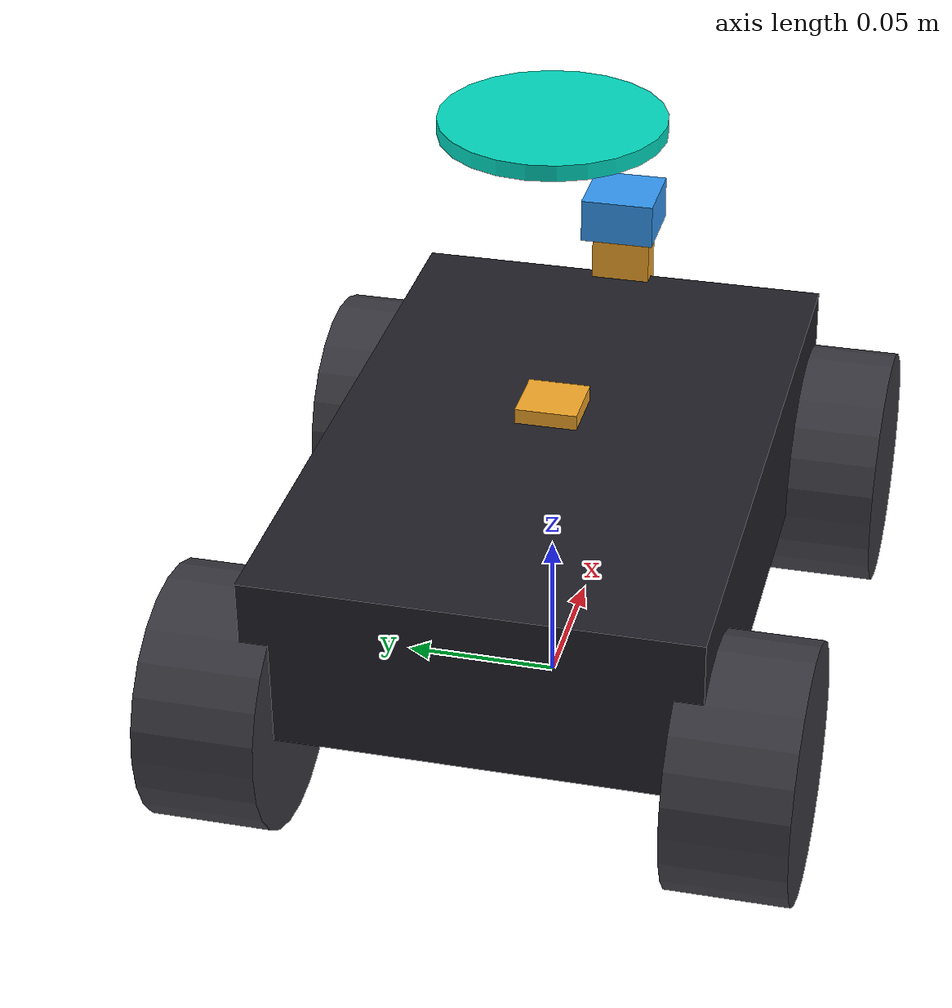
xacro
<?xml version="1.0"?>
<robot name="mecanum_rover" xmlns:xacro="http://ros.org/wiki/xacro">

  <!-- Dimensions (in meters) -->
  <xacro:property name="wheel_radius" value="0.040" />
  <xacro:property name="wheel_width"  value="0.038" />
  <xacro:property name="wheelbase"    value="0.180" />
  <xacro:property name="track_width"  value="0.160" />
  <xacro:property name="chassis_len"  value="0.220" />
  <xacro:property name="chassis_wid"  value="0.140" />
  <xacro:property name="chassis_hgt"  value="0.055" />

  <!-- Exact Sensor Geometry Specifications -->
  <!-- Camera: 11 cm from centre at front (0 deg) -->
  <xacro:property name="cam_dist"        value="0.110" />
  <!-- Fixed Dual ToF Sensors: Front 0° (+11cm) & Rear 180° (-10cm) -->
  <xacro:property name="tof_front_dist"  value="0.110" />
  <xacro:property name="tof_rear_dist"   value="-0.100" />

  <!-- Materials -->
  <material name="chassis_dark">
    <color rgba="0.12 0.12 0.15 1.0"/>
  </material>
  <material name="accent_cyan">
    <color rgba="0.0 0.85 0.75 1.0"/>
  </material>
  <material name="sensor_amber">
    <color rgba="0.95 0.65 0.15 1.0"/>
  </material>
  <material name="wheel_rubber">
    <color rgba="0.22 0.22 0.25 1.0"/>
  </material>
  <material name="camera_blue">
    <color rgba="0.20 0.60 0.95 1.0"/>
  </material>

  <!-- base_footprint (Ground projection) -->
  <link name="base_footprint"/>

  <joint name="base_footprint_joint" type="fixed">
    <parent link="base_footprint"/>
    <child link="base_link"/>
    <origin xyz="0 0 ${wheel_radius}" rpy="0 0 0"/>
  </joint>

  <!-- base_link (Chassis body origin) -->
  <link name="base_link">
    <visual>
      <origin xyz="0 0 ${chassis_hgt/2}" rpy="0 0 0"/>
      <geometry>
        <box size="${chassis_len} ${chassis_wid} ${chassis_hgt}"/>
      </geometry>
      <material name="chassis_dark"/>
    </visual>
    <collision>
      <origin xyz="0 0 ${chassis_hgt/2}" rpy="0 0 0"/>
      <geometry>
        <box size="${chassis_len} ${chassis_wid} ${chassis_hgt}"/>
      </geometry>
    </collision>
    <inertial>
      <origin xyz="0 0 ${chassis_hgt/2}" rpy="0 0 0"/>
      <mass value="2.10"/> <!-- +40% mass ballast -->
      <inertia ixx="0.0062" ixy="0.0" ixz="0.0" iyy="0.0105" iyz="0.0" izz="0.0152"/>
    </inertial>
  </link>

  <!-- IMU Link (REP-103: X forward, Y left, Z up) -->
  <link name="imu_link">
    <visual>
      <origin xyz="0 0 0" rpy="0 0 0"/>
      <geometry>
        <box size="0.02 0.02 0.005"/>
      </geometry>
      <material name="sensor_amber"/>
    </visual>
  </link>
  <joint name="imu_joint" type="fixed">
    <parent link="base_link"/>
    <child link="imu_link"/>
    <origin xyz="0.0 0.0 ${chassis_hgt + 0.008}" rpy="0 0 0"/>
  </joint>

  <!-- Front Camera Link (11cm from centre at front 0 deg) -->
  <link name="camera_link">
    <visual>
      <origin xyz="0 0 0" rpy="0 0 0"/>
      <geometry>
        <box size="0.025 0.025 0.015"/>
      </geometry>
      <material name="camera_blue"/>
    </visual>
    <collision>
      <origin xyz="0 0 0" rpy="0 0 0"/>
      <geometry>
        <box size="0.025 0.025 0.015"/>
      </geometry>
    </collision>
  </link>
  <joint name="camera_joint" type="fixed">
    <parent link="base_link"/>
    <child link="camera_link"/>
    <origin xyz="${cam_dist} 0.0 ${chassis_hgt + 0.025}" rpy="0 0 0"/>
  </joint>

  <!-- Camera Optical Frame (REP-103: Z forward, X right, Y down) -->
  <link name="camera_optical_frame"/>
  <joint name="camera_optical_joint" type="fixed">
    <parent link="camera_link"/>
    <child link="camera_optical_frame"/>
    <origin xyz="0 0 0" rpy="-1.5707963 0 -1.5707963"/>
  </joint>

  <!-- Front ToF Sensor Link (11cm from centre at front 0 deg) -->
  <link name="tof_front_link">
    <visual>
      <origin xyz="0 0 0" rpy="0 0 0"/>
      <geometry>
        <box size="0.012 0.020 0.008"/>
      </geometry>
      <material name="accent_cyan"/>
    </visual>
  </link>
  <joint name="tof_front_joint" type="fixed">
    <parent link="base_link"/>
    <child link="tof_front_link"/>
    <origin xyz="0.110 0.0 0.040" rpy="0 0 0"/>
  </joint>

  <!-- Rear ToF Sensor Link (-10cm from centre at rear 180 deg) -->
  <link name="tof_rear_link">
    <visual>
      <origin xyz="0 0 0" rpy="0 0 0"/>
      <geometry>
        <box size="0.012 0.020 0.008"/>
      </geometry>
      <material name="accent_cyan"/>
    </visual>
  </link>
  <joint name="tof_rear_joint" type="fixed">
    <parent link="base_link"/>
    <child link="tof_rear_link"/>
    <origin xyz="-0.100 0.0 0.040" rpy="0 0 3.14159"/>
  </joint>

  <!-- Virtual 2D LaserScan frame for Nav2 obstacle projection -->
  <link name="scan"/>
  <joint name="scan_joint" type="fixed">
    <parent link="base_link"/>
    <child link="scan"/>
    <origin xyz="0.0 0.0 ${chassis_hgt * 0.40}" rpy="0 0 0"/>
  </joint>

  <!-- 3-Microphone Array Link (Center mast top, z=0.16m) -->
  <link name="mic_array_link">
    <visual>
      <origin xyz="0 0 0" rpy="0 0 0"/>
      <geometry>
        <cylinder radius="0.035" length="0.005"/>
      </geometry>
      <material name="accent_cyan"/>
    </visual>
  </link>
  <joint name="mic_array_joint" type="fixed">
    <parent link="base_link"/>
    <child link="mic_array_link"/>
    <origin xyz="0.0 0.0 0.16" rpy="0 0 0"/>
  </joint>

  <!-- HLK-LD2402 24GHz Radar Link (Front bumper center, x=+0.11m, z=0.06m) -->
  <link name="ld2402_radar_link">
    <visual>
      <origin xyz="0 0 0" rpy="0 0 0"/>
      <geometry>
        <box size="0.010 0.020 0.020"/>
      </geometry>
      <material name="sensor_amber"/>
    </visual>
  </link>
  <joint name="ld2402_radar_joint" type="fixed">
    <parent link="base_link"/>
    <child link="ld2402_radar_link"/>
    <origin xyz="0.11 0.0 0.06" rpy="0 0 0"/>
  </joint>

  <!-- Mecanum Wheel Macro -->
  <xacro:macro name="mecanum_wheel" params="prefix x_reflect y_reflect">
    <link name="wheel_${prefix}_link">
      <visual>
        <origin xyz="0 0 0" rpy="${pi/2} 0 0"/>
        <geometry>
          <cylinder radius="${wheel_radius}" length="${wheel_width}"/>
        </geometry>
        <material name="wheel_rubber"/>
      </visual>
      <collision>
        <origin xyz="0 0 0" rpy="${pi/2} 0 0"/>
        <geometry>
          <cylinder radius="${wheel_radius}" length="${wheel_width}"/>
        </geometry>
      </collision>
      <inertial>
        <origin xyz="0 0 0" rpy="0 0 0"/>
        <mass value="0.14"/>
        <inertia ixx="0.00007" ixy="0" ixz="0" iyy="0.00007" iyz="0" izz="0.00011"/>
      </inertial>
    </link>

    <joint name="wheel_${prefix}_joint" type="continuous">
      <parent link="base_link"/>
      <child link="wheel_${prefix}_link"/>
      <origin xyz="${x_reflect * wheelbase / 2} ${y_reflect * track_width / 2} 0" rpy="0 0 0"/>
      <axis xyz="0 1 0"/>
    </joint>
  </xacro:macro>

  <xacro:mecanum_wheel prefix="fl" x_reflect="1"  y_reflect="1"  />
  <xacro:mecanum_wheel prefix="fr" x_reflect="1"  y_reflect="-1" />
  <xacro:mecanum_wheel prefix="rl" x_reflect="-1" y_reflect="1"  />
  <xacro:mecanum_wheel prefix="rr" x_reflect="-1" y_reflect="-1" />

</robot>
